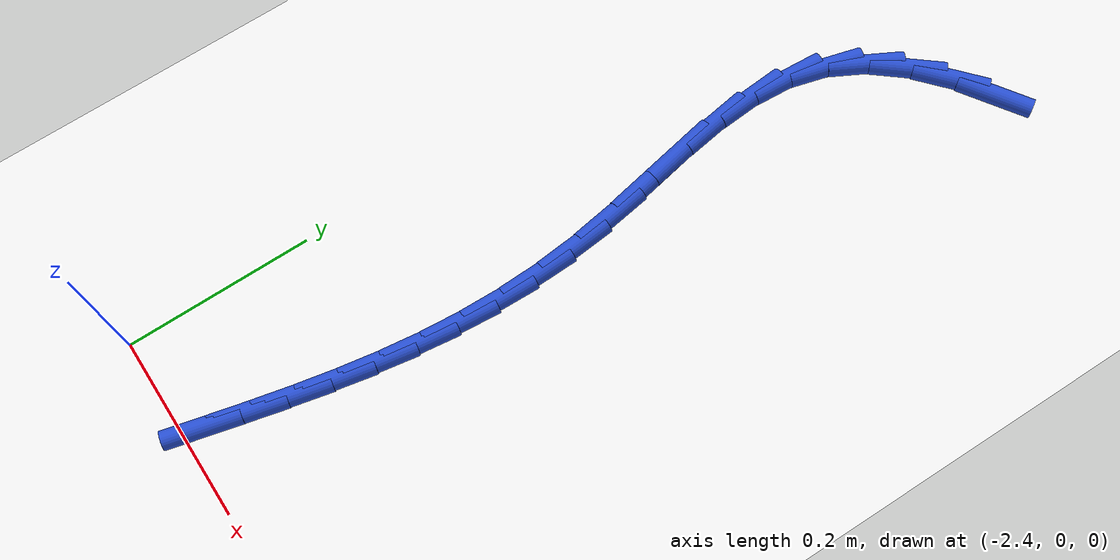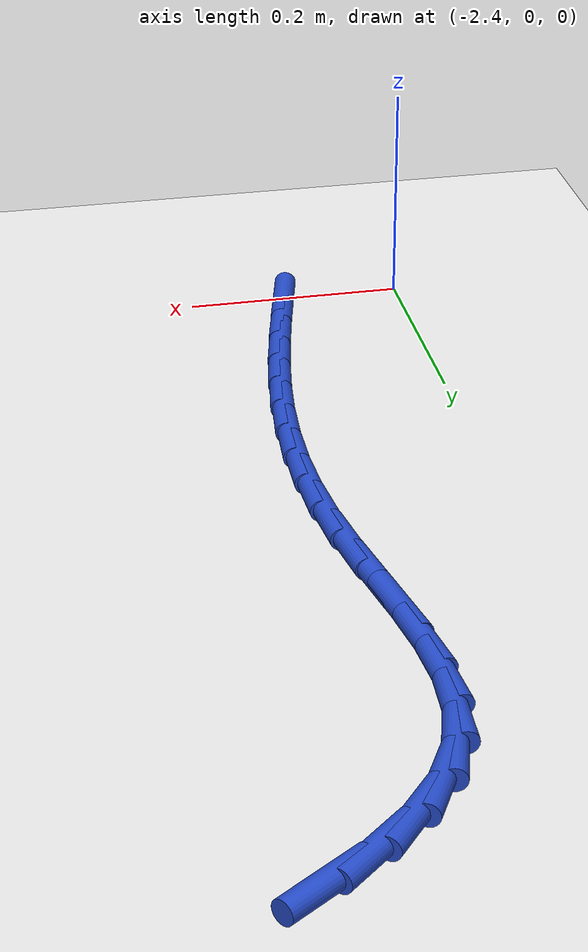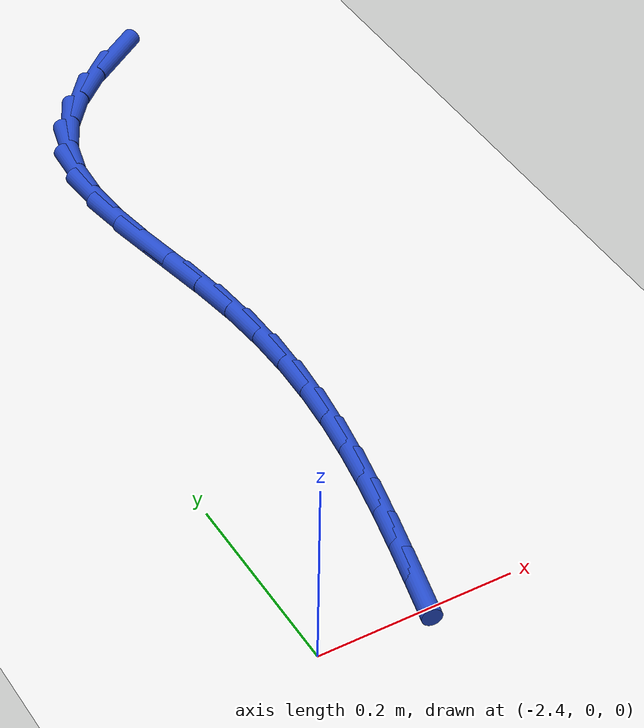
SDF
<sdf version="1.6">
 <world name="default">
  <model name="ground_plane">
   <static>1</static>
   <link name="link">
    <collision name="collision">
     <geometry><plane><normal>0 0 1</normal><size>100 100</size></plane></geometry>
     <surface><friction><ode><mu>100</mu><mu2>50</mu2></ode></friction></surface>
    </collision>
    <visual name="visual">
     <cast_shadows>0</cast_shadows>
     <geometry><plane><normal>0 0 1</normal><size>100 100</size></plane></geometry>
     <material>
      <script><uri>file://media/materials/scripts/gazebo.material</uri><name>Gazebo/WhiteGlow</name></script>
     </material>
    </visual>
   </link>
  </model>
  <model name="line">
   <link name="link_64">
    <pose>-2.149301021375569 0.8713234279660362 0.01 0 1.57 0.6018094727072582</pose>
    <collision name="collision">
     <geometry><cylinder><radius>0.01</radius><length>0.08</length></cylinder></geometry>
    </collision>
    <visual name="visual">
     <material>
      <script><name>Gazebo/Blue</name><uri>file://media/materials/scripts/gazebo.material</uri></script>
     </material>
     <geometry><cylinder><radius>0.01</radius><length>0.08</length></cylinder></geometry>
    </visual>
   </link>
   <link name="link_65">
    <pose>-2.1886739104761617 0.8442822660177258 0.01 0 1.57 0.7311764997715887</pose>
    <collision name="collision">
     <geometry><cylinder><radius>0.01</radius><length>0.08</length></cylinder></geometry>
    </collision>
    <visual name="visual">
     <material>
      <script><name>Gazebo/Blue</name><uri>file://media/materials/scripts/gazebo.material</uri></script>
     </material>
     <geometry><cylinder><radius>0.01</radius><length>0.08</length></cylinder></geometry>
    </visual>
   </link>
   <link name="link_66">
    <pose>-2.2224109266934278 0.8140188637590867 0.01 0 1.57 0.8919285727185258</pose>
    <collision name="collision">
     <geometry><cylinder><radius>0.01</radius><length>0.08</length></cylinder></geometry>
    </collision>
    <visual name="visual">
     <material>
      <script><name>Gazebo/Blue</name><uri>file://media/materials/scripts/gazebo.material</uri></script>
     </material>
     <geometry><cylinder><radius>0.01</radius><length>0.08</length></cylinder></geometry>
    </visual>
   </link>
   <link name="link_67">
    <pose>-2.2495189834765776 0.7804189896973772 0.01 0 1.57 1.086620536200083</pose>
    <collision name="collision">
     <geometry><cylinder><radius>0.01</radius><length>0.08</length></cylinder></geometry>
    </collision>
    <visual name="visual">
     <material>
      <script><name>Gazebo/Blue</name><uri>file://media/materials/scripts/gazebo.material</uri></script>
     </material>
     <geometry><cylinder><radius>0.01</radius><length>0.08</length></cylinder></geometry>
    </visual>
   </link>
   <link name="link_68">
    <pose>-2.2690049942748254 0.7433684123398537 0.01 0 1.57 1.3081487789885176</pose>
    <collision name="collision">
     <geometry><cylinder><radius>0.01</radius><length>0.08</length></cylinder></geometry>
    </collision>
    <visual name="visual">
     <material>
      <script><name>Gazebo/Blue</name><uri>file://media/materials/scripts/gazebo.material</uri></script>
     </material>
     <geometry><cylinder><radius>0.01</radius><length>0.08</length></cylinder></geometry>
    </visual>
   </link>
   <link name="link_69">
    <pose>-2.2799210561690058 0.702766892418842 0.01 0 1.57 1.5079635726277851</pose>
    <collision name="collision">
     <geometry><cylinder><radius>0.01</radius><length>0.08</length></cylinder></geometry>
    </collision>
    <visual name="visual">
     <material>
      <script><name>Gazebo/Blue</name><uri>file://media/materials/scripts/gazebo.material</uri></script>
     </material>
     <geometry><cylinder><radius>0.01</radius><length>0.08</length></cylinder></geometry>
    </visual>
   </link>
   <link name="link_70">
    <pose>-2.2826787528451837 0.6589351891980656 0.01 0 1.57 -1.4969184186341356</pose>
    <collision name="collision">
     <geometry><cylinder><radius>0.01</radius><length>0.08</length></cylinder></geometry>
    </collision>
    <visual name="visual">
     <material>
      <script><name>Gazebo/Blue</name><uri>file://media/materials/scripts/gazebo.material</uri></script>
     </material>
     <geometry><cylinder><radius>0.01</radius><length>0.08</length></cylinder></geometry>
    </visual>
   </link>
   <link name="link_71">
    <pose>-2.2792552018156145 0.612678868072581 0.01 0 1.57 -1.4144799752195978</pose>
    <collision name="collision">
     <geometry><cylinder><radius>0.01</radius><length>0.08</length></cylinder></geometry>
    </collision>
    <visual name="visual">
     <material>
      <script><name>Gazebo/Blue</name><uri>file://media/materials/scripts/gazebo.material</uri></script>
     </material>
     <geometry><cylinder><radius>0.01</radius><length>0.08</length></cylinder></geometry>
    </visual>
   </link>
   <link name="link_72">
    <pose>-2.2717141711036164 0.5648303279036696 0.01 0 1.57 -1.3759128625830233</pose>
    <collision name="collision">
     <geometry><cylinder><radius>0.01</radius><length>0.08</length></cylinder></geometry>
    </collision>
    <visual name="visual">
     <material>
      <script><name>Gazebo/Blue</name><uri>file://media/materials/scripts/gazebo.material</uri></script>
     </material>
     <geometry><cylinder><radius>0.01</radius><length>0.08</length></cylinder></geometry>
    </visual>
   </link>
   <link name="link_73">
    <pose>-2.262119428732507 0.5162219675526116 0.01 0 1.57 -1.3758281898802402</pose>
    <collision name="collision">
     <geometry><cylinder><radius>0.01</radius><length>0.08</length></cylinder></geometry>
    </collision>
    <visual name="visual">
     <material>
      <script><name>Gazebo/Blue</name><uri>file://media/materials/scripts/gazebo.material</uri></script>
     </material>
     <geometry><cylinder><radius>0.01</radius><length>0.08</length></cylinder></geometry>
    </visual>
   </link>
   <link name="link_74">
    <pose>-2.252534742725607 0.46768618588068717 0.01 0 1.57 -1.4139658285064758</pose>
    <collision name="collision">
     <geometry><cylinder><radius>0.01</radius><length>0.08</length></cylinder></geometry>
    </collision>
    <visual name="visual">
     <material>
      <script><name>Gazebo/Blue</name><uri>file://media/materials/scripts/gazebo.material</uri></script>
     </material>
     <geometry><cylinder><radius>0.01</radius><length>0.08</length></cylinder></geometry>
    </visual>
   </link>
   <link name="link_75">
    <pose>-2.245001297897707 0.42004507217768966 0.01 0 1.57 -1.4761943900437773</pose>
    <collision name="collision">
     <geometry><cylinder><radius>0.01</radius><length>0.08</length></cylinder></geometry>
    </collision>
    <visual name="visual">
     <material>
      <script><name>Gazebo/Blue</name><uri>file://media/materials/scripts/gazebo.material</uri></script>
     </material>
     <geometry><cylinder><radius>0.01</radius><length>0.08</length></cylinder></geometry>
    </visual>
   </link>
   <link name="link_76">
    <pose>-2.240602259726956 0.37368336561871796 0.01 0 1.57 -1.538251700057381</pose>
    <collision name="collision">
     <geometry><cylinder><radius>0.01</radius><length>0.08</length></cylinder></geometry>
    </collision>
    <visual name="visual">
     <material>
      <script><name>Gazebo/Blue</name><uri>file://media/materials/scripts/gazebo.material</uri></script>
     </material>
     <geometry><cylinder><radius>0.01</radius><length>0.08</length></cylinder></geometry>
    </visual>
   </link>
   <link name="link_77">
    <pose>-2.239127864552394 0.3283955639446485 0.01 0 1.57 1.5449587053893048</pose>
    <collision name="collision">
     <geometry><cylinder><radius>0.01</radius><length>0.08</length></cylinder></geometry>
    </collision>
    <visual name="visual">
     <material>
      <script><name>Gazebo/Blue</name><uri>file://media/materials/scripts/gazebo.material</uri></script>
     </material>
     <geometry><cylinder><radius>0.01</radius><length>0.08</length></cylinder></geometry>
    </visual>
   </link>
   <link name="link_78">
    <pose>-2.240276890641112 0.2839344129225451 0.01 0 1.57 1.49185663152797</pose>
    <collision name="collision">
     <geometry><cylinder><radius>0.01</radius><length>0.08</length></cylinder></geometry>
    </collision>
    <visual name="visual">
     <material>
      <script><name>Gazebo/Blue</name><uri>file://media/materials/scripts/gazebo.material</uri></script>
     </material>
     <geometry><cylinder><radius>0.01</radius><length>0.08</length></cylinder></geometry>
    </visual>
   </link>
   <link name="link_79">
    <pose>-2.243748116260204 0.2400526583194699 0.01 0 1.57 1.4453449018778282</pose>
    <collision name="collision">
     <geometry><cylinder><radius>0.01</radius><length>0.08</length></cylinder></geometry>
    </collision>
    <visual name="visual">
     <material>
      <script><name>Gazebo/Blue</name><uri>file://media/materials/scripts/gazebo.material</uri></script>
     </material>
     <geometry><cylinder><radius>0.01</radius><length>0.08</length></cylinder></geometry>
    </visual>
   </link>
   <link name="link_80">
    <pose>-2.24924031967676 0.19650304590248666 0.01 0 1.57 1.4063676767059676</pose>
    <collision name="collision">
     <geometry><cylinder><radius>0.01</radius><length>0.08</length></cylinder></geometry>
    </collision>
    <visual name="visual">
     <material>
      <script><name>Gazebo/Blue</name><uri>file://media/materials/scripts/gazebo.material</uri></script>
     </material>
     <geometry><cylinder><radius>0.01</radius><length>0.08</length></cylinder></geometry>
    </visual>
   </link>
   <link name="link_81">
    <pose>-2.2564522791578727 0.15303832143865798 0.01 0 1.57 1.3754937663213318</pose>
    <collision name="collision">
     <geometry><cylinder><radius>0.01</radius><length>0.08</length></cylinder></geometry>
    </collision>
    <visual name="visual">
     <material>
      <script><name>Gazebo/Blue</name><uri>file://media/materials/scripts/gazebo.material</uri></script>
     </material>
     <geometry><cylinder><radius>0.01</radius><length>0.08</length></cylinder></geometry>
    </visual>
   </link>
   <link name="link_82">
    <pose>-2.2650827729706347 0.1094112306950465 0.01 0 1.57 1.352952641293258</pose>
    <collision name="collision">
     <geometry><cylinder><radius>0.01</radius><length>0.08</length></cylinder></geometry>
    </collision>
    <visual name="visual">
     <material>
      <script><name>Gazebo/Blue</name><uri>file://media/materials/scripts/gazebo.material</uri></script>
     </material>
     <geometry><cylinder><radius>0.01</radius><length>0.08</length></cylinder></geometry>
    </visual>
   </link>
   <link name="link_83">
    <pose>-2.274830579382137 0.06537451943871617 0.01 0 1.57 1.3386933624595787</pose>
    <collision name="collision">
     <geometry><cylinder><radius>0.01</radius><length>0.08</length></cylinder></geometry>
    </collision>
    <visual name="visual">
     <material>
      <script><name>Gazebo/Blue</name><uri>file://media/materials/scripts/gazebo.material</uri></script>
     </material>
     <geometry><cylinder><radius>0.01</radius><length>0.08</length></cylinder></geometry>
    </visual>
   </link>
   <link name="link_84">
    <pose>-2.2853944766594716 0.020680933436728936 0.01 0 1.57 1.3324472859616119</pose>
    <collision name="collision">
     <geometry><cylinder><radius>0.01</radius><length>0.08</length></cylinder></geometry>
    </collision>
    <visual name="visual">
     <material>
      <script><name>Gazebo/Blue</name><uri>file://media/materials/scripts/gazebo.material</uri></script>
     </material>
     <geometry><cylinder><radius>0.01</radius><length>0.08</length></cylinder></geometry>
    </visual>
   </link>
  </model>
 </world>
</sdf>
